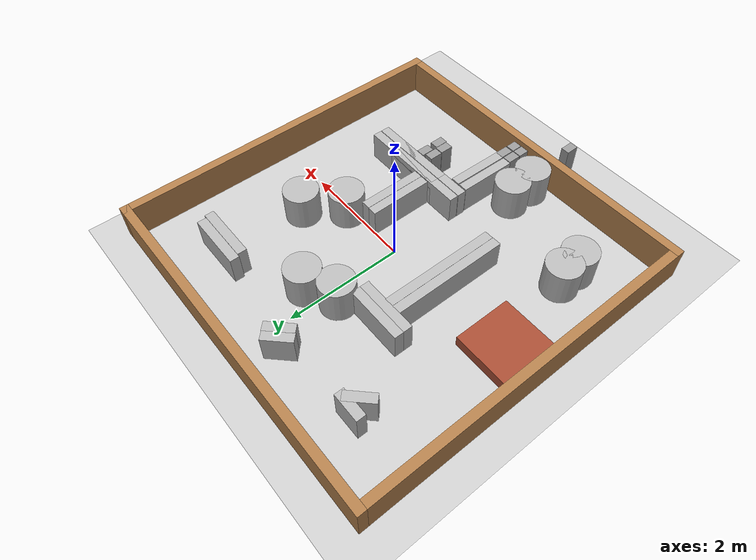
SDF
<sdf version="1.6">
 <world name="default">
  <light name="sun" type="directional">
   <pose>0 0 10 0 -0 0</pose>
   <diffuse>0.8 0.8 0.8 1</diffuse>
   <specular>0.2 0.2 0.2 1</specular>
   <attenuation>
    <range>1000</range>
    <constant>0.9</constant>
    <linear>0.01</linear>
    <quadratic>0.001</quadratic>
   </attenuation>
   <direction>-0.5 0.1 -0.9</direction>
  </light>
  <model name="ground_plane">
   <static>1</static>
   <link name="link">
    <collision name="collision">
     <geometry><plane><normal>0 0 1</normal><size>100 100</size></plane></geometry>
     <surface><friction><ode><mu>100</mu><mu2>50</mu2></ode></friction></surface>
    </collision>
    <visual name="visual">
     <cast_shadows>0</cast_shadows>
     <geometry><plane><normal>0 0 1</normal><size>100 100</size></plane></geometry>
     <material>
      <script><uri>file://media/materials/scripts/gazebo.material</uri><name>Gazebo/Grey</name></script>
     </material>
    </visual>
   </link>
  </model>
  <gravity>0 0 -9.8</gravity>
  <magnetic_field>6e-06 2.3e-05 -4.2e-05</magnetic_field>
  <atmosphere type="adiabatic"/>
  <physics name="default_physics" default="0" type="ode">
   <max_step_size>0.001</max_step_size>
   <real_time_factor>1</real_time_factor>
   <real_time_update_rate>1000</real_time_update_rate>
  </physics>
  <scene><ambient>0.4 0.4 0.4 1</ambient><background>0.7 0.7 0.7 1</background><shadows>1</shadows></scene>
  <spherical_coordinates>
   <surface_model>EARTH_WGS84</surface_model>
   <latitude_deg>0</latitude_deg>
   <longitude_deg>0</longitude_deg>
   <elevation>0</elevation>
   <heading_deg>0</heading_deg>
  </spherical_coordinates>
  <model name="cylinder_1">
   <pose>-2.12191 -1.51039 0.3 0 -0 0</pose>
   <static>1</static>
   <link name="link">
    <collision name="collision">
     <geometry><cylinder><radius>0.3</radius><length>0.6</length></cylinder></geometry>
    </collision>
    <visual name="visual">
     <geometry><cylinder><radius>0.3</radius><length>0.6</length></cylinder></geometry>
    </visual>
   </link>
  </model>
  <model name="cylinder_1_clone">
   <pose>1.59172 0.652449 0.3 0 -0 0</pose>
   <static>1</static>
   <link name="link">
    <collision name="collision">
     <geometry><cylinder><radius>0.3</radius><length>0.6</length></cylinder></geometry>
    </collision>
    <visual name="visual">
     <geometry><cylinder><radius>0.3</radius><length>0.6</length></cylinder></geometry>
    </visual>
   </link>
  </model>
  <model name="box_1_clone_0">
   <static>1</static>
   <pose>-0.960861 -0.096946 0.250001 0 -0 0</pose>
   <link name="link">
    <collision name="collision">
     <geometry><box><size>0.16 1.9931 0.5</size></box></geometry>
     <surface><friction><ode><mu>0.01</mu><mu2>0.01</mu2></ode></friction></surface>
    </collision>
    <visual name="visual"><geometry><box><size>0.16 1.9931 0.5</size></box></geometry></visual>
    <inertial>
     <inertia><ixx>1</ixx><ixy>0</ixy><ixz>0</ixz><iyy>1</iyy><iyz>0</iyz><izz>1</izz></inertia>
     <mass>1</mass>
    </inertial>
   </link>
  </model>
  <model name="box_1_clone_clone_1">
   <static>1</static>
   <pose>-0.979219 0.968438 0.250001 -3e-06 -0 -1.57648</pose>
   <link name="link">
    <collision name="collision">
     <geometry><box><size>0.16 1 0.5</size></box></geometry>
     <surface><friction><ode><mu>0.01</mu><mu2>0.01</mu2></ode></friction></surface>
    </collision>
    <visual name="visual"><geometry><box><size>0.16 1 0.5</size></box></geometry></visual>
    <inertial>
     <inertia><ixx>1</ixx><ixy>0</ixy><ixz>0</ixz><iyy>1</iyy><iyz>0</iyz><izz>1</izz></inertia>
     <mass>1</mass>
    </inertial>
   </link>
  </model>
  <model name="box_1_clone_clone_2">
   <static>1</static>
   <pose>1.60989 2.18682 0.250001 -3e-06 -0 -1.57648</pose>
   <link name="link">
    <collision name="collision">
     <geometry><box><size>0.16 1 0.5</size></box></geometry>
     <surface><friction><ode><mu>0.01</mu><mu2>0.01</mu2></ode></friction></surface>
    </collision>
    <visual name="visual"><geometry><box><size>0.16 1 0.5</size></box></geometry></visual>
    <inertial>
     <inertia><ixx>1</ixx><ixy>0</ixy><ixz>0</ixz><iyy>1</iyy><iyz>0</iyz><izz>1</izz></inertia>
     <mass>1</mass>
    </inertial>
   </link>
  </model>
  <model name="box_1_clone_clone_3">
   <static>1</static>
   <pose>1.66147 2.02547 0.250001 -3e-06 -0 -1.57648</pose>
   <link name="link">
    <collision name="collision">
     <geometry><box><size>0.16 1 0.5</size></box></geometry>
     <surface><friction><ode><mu>0.01</mu><mu2>0.01</mu2></ode></friction></surface>
    </collision>
    <visual name="visual"><geometry><box><size>0.16 1 0.5</size></box></geometry></visual>
    <inertial>
     <inertia><ixx>1</ixx><ixy>0</ixy><ixz>0</ixz><iyy>1</iyy><iyz>0</iyz><izz>1</izz></inertia>
     <mass>1</mass>
    </inertial>
   </link>
  </model>
  <model name="cylinder_1_clone_clone">
   <pose>0.280463 1.53345 0.3 0 -0 0</pose>
   <static>1</static>
   <link name="link">
    <collision name="collision">
     <geometry><cylinder><radius>0.3</radius><length>0.6</length></cylinder></geometry>
    </collision>
    <visual name="visual">
     <geometry><cylinder><radius>0.3</radius><length>0.6</length></cylinder></geometry>
    </visual>
   </link>
  </model>
  <model name="cylinder_1_clone_clone_clone">
   <pose>-0.43924 -2.13214 0.3 0 -0 0</pose>
   <static>1</static>
   <link name="link">
    <collision name="collision">
     <geometry><cylinder><radius>0.3</radius><length>0.6</length></cylinder></geometry>
    </collision>
    <visual name="visual">
     <geometry><cylinder><radius>0.3</radius><length>0.6</length></cylinder></geometry>
    </visual>
   </link>
  </model>
  <model name="box_1_clone_clone">
   <static>1</static>
   <pose>-1.87033 2.11757 0.250001 -3e-06 -0 -0.78</pose>
   <link name="link">
    <collision name="collision">
     <geometry><box><size>0.16 0.490126 0.5</size></box></geometry>
     <surface><friction><ode><mu>0.01</mu><mu2>0.01</mu2></ode></friction></surface>
    </collision>
    <visual name="visual"><geometry><box><size>0.16 0.490126 0.5</size></box></geometry></visual>
    <inertial>
     <inertia><ixx>1</ixx><ixy>0</ixy><ixz>0</ixz><iyy>1</iyy><iyz>0</iyz><izz>1</izz></inertia>
     <mass>1</mass>
    </inertial>
   </link>
  </model>
  <model name="box_1_clone_clone_0">
   <static>1</static>
   <pose>-0.313315 2.33846 0.250001 -3e-06 -0 -0.78</pose>
   <link name="link">
    <collision name="collision">
     <geometry><box><size>0.16 0.490126 0.5</size></box></geometry>
     <surface><friction><ode><mu>0.01</mu><mu2>0.01</mu2></ode></friction></surface>
    </collision>
    <visual name="visual"><geometry><box><size>0.16 0.490126 0.5</size></box></geometry></visual>
    <inertial>
     <inertia><ixx>1</ixx><ixy>0</ixy><ixz>0</ixz><iyy>1</iyy><iyz>0</iyz><izz>1</izz></inertia>
     <mass>1</mass>
    </inertial>
   </link>
  </model>
  <model name="walls_2">
   <link name="Wall_0">
    <pose>0 -3 0 0 -0 0</pose>
    <visual name="Wall_0_Visual">
     <pose>0 0 0.3 0 -0 0</pose>
     <geometry><box><size>6.15 0.15 0.6</size></box></geometry>
     <material>
      <script><uri>file://media/materials/scripts/gazebo.material</uri><name>Gazebo/Wood</name></script>
      <ambient>1 1 1 1</ambient>
      <diffuse>1 1 1 1</diffuse>
      <specular>0.2 0.2 0.2 1</specular>
      <emissive>0 0 0 1</emissive>
     </material>
    </visual>
    <collision name="Wall_0_Collision">
     <pose>0 0 0.3 0 -0 0</pose>
     <geometry><box><size>6.15 0.15 0.6</size></box></geometry>
     <surface>
      <friction>
       <ode><mu>1</mu><mu2>1</mu2><fdir1>0 0 0</fdir1><slip1>0</slip1><slip2>0</slip2></ode>
       <torsional>
        <coefficient>1</coefficient>
        <patch_radius>0</patch_radius>
        <surface_radius>0</surface_radius>
        <use_patch_radius>1</use_patch_radius>
        <ode><slip>0</slip></ode>
       </torsional>
      </friction>
      <bounce><restitution_coefficient>0</restitution_coefficient><threshold>1e+06</threshold></bounce>
      <contact>
       <collide_without_contact>0</collide_without_contact>
       <collide_without_contact_bitmask>1</collide_without_contact_bitmask>
       <collide_bitmask>1</collide_bitmask>
       <ode>
        <soft_cfm>0</soft_cfm>
        <soft_erp>0.2</soft_erp>
        <kp>1e+13</kp>
        <kd>1</kd>
        <max_vel>0.01</max_vel>
        <min_depth>0</min_depth>
       </ode>
       <bullet>
        <split_impulse>1</split_impulse>
        <split_impulse_penetration_threshold>-0.01</split_impulse_penetration_threshold>
        <soft_cfm>0</soft_cfm>
        <soft_erp>0.2</soft_erp>
        <kp>1e+13</kp>
        <kd>1</kd>
       </bullet>
      </contact>
     </surface>
    </collision>
   </link>
   <link name="Wall_3">
    <pose>3 0 0 0 -0 1.5708</pose>
    <visual name="Wall_3_Visual">
     <pose>0 0 0.3 0 -0 0</pose>
     <geometry><box><size>6.15 0.15 0.6</size></box></geometry>
     <material>
      <script><uri>file://media/materials/scripts/gazebo.material</uri><name>Gazebo/Wood</name></script>
      <ambient>1 1 1 1</ambient>
      <diffuse>1 1 1 1</diffuse>
      <specular>0.2 0.2 0.2 1</specular>
      <emissive>0 0 0 1</emissive>
     </material>
    </visual>
    <collision name="Wall_3_Collision">
     <pose>0 0 0.3 0 -0 0</pose>
     <geometry><box><size>6.15 0.15 0.6</size></box></geometry>
     <surface>
      <friction>
       <ode><mu>1</mu><mu2>1</mu2><fdir1>0 0 0</fdir1><slip1>0</slip1><slip2>0</slip2></ode>
       <torsional>
        <coefficient>1</coefficient>
        <patch_radius>0</patch_radius>
        <surface_radius>0</surface_radius>
        <use_patch_radius>1</use_patch_radius>
        <ode><slip>0</slip></ode>
       </torsional>
      </friction>
      <bounce><restitution_coefficient>0</restitution_coefficient><threshold>1e+06</threshold></bounce>
      <contact>
       <collide_without_contact>0</collide_without_contact>
       <collide_without_contact_bitmask>1</collide_without_contact_bitmask>
       <collide_bitmask>1</collide_bitmask>
       <ode>
        <soft_cfm>0</soft_cfm>
        <soft_erp>0.2</soft_erp>
        <kp>1e+13</kp>
        <kd>1</kd>
        <max_vel>0.01</max_vel>
        <min_depth>0</min_depth>
       </ode>
       <bullet>
        <split_impulse>1</split_impulse>
        <split_impulse_penetration_threshold>-0.01</split_impulse_penetration_threshold>
        <soft_cfm>0</soft_cfm>
        <soft_erp>0.2</soft_erp>
        <kp>1e+13</kp>
        <kd>1</kd>
       </bullet>
      </contact>
     </surface>
    </collision>
   </link>
   <link name="Wall_5">
    <pose>0 3 0 0 -0 3.14159</pose>
    <visual name="Wall_5_Visual">
     <pose>0 0 0.3 0 -0 0</pose>
     <geometry><box><size>6.15 0.15 0.6</size></box></geometry>
     <material>
      <script><uri>file://media/materials/scripts/gazebo.material</uri><name>Gazebo/Wood</name></script>
      <ambient>1 1 1 1</ambient>
      <diffuse>1 1 1 1</diffuse>
      <specular>0.2 0.2 0.2 1</specular>
      <emissive>0 0 0 1</emissive>
     </material>
    </visual>
    <collision name="Wall_5_Collision">
     <pose>0 0 0.3 0 -0 0</pose>
     <geometry><box><size>6.15 0.15 0.6</size></box></geometry>
     <surface>
      <friction>
       <ode><mu>1</mu><mu2>1</mu2><fdir1>0 0 0</fdir1><slip1>0</slip1><slip2>0</slip2></ode>
       <torsional>
        <coefficient>1</coefficient>
        <patch_radius>0</patch_radius>
        <surface_radius>0</surface_radius>
        <use_patch_radius>1</use_patch_radius>
        <ode><slip>0</slip></ode>
       </torsional>
      </friction>
      <bounce><restitution_coefficient>0</restitution_coefficient><threshold>1e+06</threshold></bounce>
      <contact>
       <collide_without_contact>0</collide_without_contact>
       <collide_without_contact_bitmask>1</collide_without_contact_bitmask>
       <collide_bitmask>1</collide_bitmask>
       <ode>
        <soft_cfm>0</soft_cfm>
        <soft_erp>0.2</soft_erp>
        <kp>1e+13</kp>
        <kd>1</kd>
        <max_vel>0.01</max_vel>
        <min_depth>0</min_depth>
       </ode>
       <bullet>
        <split_impulse>1</split_impulse>
        <split_impulse_penetration_threshold>-0.01</split_impulse_penetration_threshold>
        <soft_cfm>0</soft_cfm>
        <soft_erp>0.2</soft_erp>
        <kp>1e+13</kp>
        <kd>1</kd>
       </bullet>
      </contact>
     </surface>
    </collision>
   </link>
   <link name="Wall_6">
    <pose>-3 0 0 0 0 -1.5708</pose>
    <visual name="Wall_6_Visual">
     <pose>0 0 0.3 0 -0 0</pose>
     <geometry><box><size>6.15 0.15 0.6</size></box></geometry>
     <material>
      <script><uri>file://media/materials/scripts/gazebo.material</uri><name>Gazebo/Wood</name></script>
      <ambient>1 1 1 1</ambient>
      <diffuse>1 1 1 1</diffuse>
      <specular>0.2 0.2 0.2 1</specular>
      <emissive>0 0 0 1</emissive>
     </material>
    </visual>
    <collision name="Wall_6_Collision">
     <pose>0 0 0.3 0 -0 0</pose>
     <geometry><box><size>6.15 0.15 0.6</size></box></geometry>
     <surface>
      <friction>
       <ode><mu>1</mu><mu2>1</mu2><fdir1>0 0 0</fdir1><slip1>0</slip1><slip2>0</slip2></ode>
       <torsional>
        <coefficient>1</coefficient>
        <patch_radius>0</patch_radius>
        <surface_radius>0</surface_radius>
        <use_patch_radius>1</use_patch_radius>
        <ode><slip>0</slip></ode>
       </torsional>
      </friction>
      <bounce><restitution_coefficient>0</restitution_coefficient><threshold>1e+06</threshold></bounce>
      <contact>
       <collide_without_contact>0</collide_without_contact>
       <collide_without_contact_bitmask>1</collide_without_contact_bitmask>
       <collide_bitmask>1</collide_bitmask>
       <ode>
        <soft_cfm>0</soft_cfm>
        <soft_erp>0.2</soft_erp>
        <kp>1e+13</kp>
        <kd>1</kd>
        <max_vel>0.01</max_vel>
        <min_depth>0</min_depth>
       </ode>
       <bullet>
        <split_impulse>1</split_impulse>
        <split_impulse_penetration_threshold>-0.01</split_impulse_penetration_threshold>
        <soft_cfm>0</soft_cfm>
        <soft_erp>0.2</soft_erp>
        <kp>1e+13</kp>
        <kd>1</kd>
       </bullet>
      </contact>
     </surface>
    </collision>
   </link>
   <static>1</static>
   <pose>-0.022836 0.02028 0 0 -0 0</pose>
  </model>
  <model name="box_1_clone_0_clone">
   <static>1</static>
   <pose>-1.12236 -0.101653 0.250001 0 -0 0</pose>
   <link name="link">
    <collision name="collision">
     <geometry><box><size>0.16 1.9931 0.5</size></box></geometry>
     <surface><friction><ode><mu>0.01</mu><mu2>0.01</mu2></ode></friction></surface>
    </collision>
    <visual name="visual"><geometry><box><size>0.16 1.9931 0.5</size></box></geometry></visual>
    <inertial>
     <inertia><ixx>1</ixx><ixy>0</ixy><ixz>0</ixz><iyy>1</iyy><iyz>0</iyz><izz>1</izz></inertia>
     <mass>1</mass>
    </inertial>
   </link>
  </model>
  <model name="box_1_clone_clone_1_clone">
   <static>1</static>
   <pose>-0.978831 1.1274 0.250001 -3e-06 -0 -1.57648</pose>
   <link name="link">
    <collision name="collision">
     <geometry><box><size>0.16 1 0.5</size></box></geometry>
     <surface><friction><ode><mu>0.01</mu><mu2>0.01</mu2></ode></friction></surface>
    </collision>
    <visual name="visual"><geometry><box><size>0.16 1 0.5</size></box></geometry></visual>
    <inertial>
     <inertia><ixx>1</ixx><ixy>0</ixy><ixz>0</ixz><iyy>1</iyy><iyz>0</iyz><izz>1</izz></inertia>
     <mass>1</mass>
    </inertial>
   </link>
  </model>
  <model name="box_1_clone_clone_0_clone">
   <static>1</static>
   <pose>-0.427207 2.4412 0.250001 -3e-06 -0 -0.78</pose>
   <link name="link">
    <collision name="collision">
     <geometry><box><size>0.16 0.490126 0.5</size></box></geometry>
     <surface><friction><ode><mu>0.01</mu><mu2>0.01</mu2></ode></friction></surface>
    </collision>
    <visual name="visual"><geometry><box><size>0.16 0.490126 0.5</size></box></geometry></visual>
    <inertial>
     <inertia><ixx>1</ixx><ixy>0</ixy><ixz>0</ixz><iyy>1</iyy><iyz>0</iyz><izz>1</izz></inertia>
     <mass>1</mass>
    </inertial>
   </link>
  </model>
  <model name="box_1_clone_clone_clone_0">
   <static>1</static>
   <pose>-1.87515 2.28221 0.250001 -3e-06 -0 -1.57648</pose>
   <link name="link">
    <collision name="collision">
     <geometry><box><size>0.16 0.490126 0.5</size></box></geometry>
     <surface><friction><ode><mu>0.01</mu><mu2>0.01</mu2></ode></friction></surface>
    </collision>
    <visual name="visual"><geometry><box><size>0.16 0.490126 0.5</size></box></geometry></visual>
    <inertial>
     <inertia><ixx>1</ixx><ixy>0</ixy><ixz>0</ixz><iyy>1</iyy><iyz>0</iyz><izz>1</izz></inertia>
     <mass>1</mass>
    </inertial>
   </link>
  </model>
  <model name="cylinder_1_clone_0">
   <pose>-2.10817 -1.87423 0.3 0 -0 0</pose>
   <static>1</static>
   <link name="link">
    <collision name="collision">
     <geometry><cylinder><radius>0.3</radius><length>0.6</length></cylinder></geometry>
    </collision>
    <visual name="visual">
     <geometry><cylinder><radius>0.3</radius><length>0.6</length></cylinder></geometry>
    </visual>
   </link>
  </model>
  <model name="cylinder_1_clone_clone_clone_clone">
   <pose>-0.447788 -2.58828 0.3 0 -0 0</pose>
   <static>1</static>
   <link name="link">
    <collision name="collision">
     <geometry><cylinder><radius>0.3</radius><length>0.6</length></cylinder></geometry>
    </collision>
    <visual name="visual">
     <geometry><cylinder><radius>0.3</radius><length>0.6</length></cylinder></geometry>
    </visual>
   </link>
  </model>
  <model name="cylinder_1_clone_clone_clone_clone_0">
   <pose>1.11789 0.094036 0.3 0 -0 0</pose>
   <static>1</static>
   <link name="link">
    <collision name="collision">
     <geometry><cylinder><radius>0.3</radius><length>0.6</length></cylinder></geometry>
    </collision>
    <visual name="visual">
     <geometry><cylinder><radius>0.3</radius><length>0.6</length></cylinder></geometry>
    </visual>
   </link>
  </model>
  <model name="cylinder_1_clone_clone_clone_0">
   <pose>-0.234976 1.28443 0.3 0 -0 0</pose>
   <static>1</static>
   <link name="link">
    <collision name="collision">
     <geometry><cylinder><radius>0.3</radius><length>0.6</length></cylinder></geometry>
    </collision>
    <visual name="visual">
     <geometry><cylinder><radius>0.3</radius><length>0.6</length></cylinder></geometry>
    </visual>
   </link>
  </model>
  <model name="invisibleWall">
   <pose>-2.38151 -0.100183 0 0 -0 0</pose>
   <link name="Wall_2">
    <collision name="Wall_2_Collision">
     <geometry><box><size>1.01 1 0.2</size></box></geometry>
     <pose>0 0 0.1 0 -0 0</pose>
    </collision>
    <visual name="Wall_2_Visual">
     <pose>0 0 0.1 0 -0 0</pose>
     <geometry><box><size>1.01 1 0.2</size></box></geometry>
     <material>
      <script><uri>file://media/materials/scripts/gazebo.material</uri><name>Gazebo/Bricks</name></script>
      <ambient>1 1 1 1</ambient>
     </material>
    </visual>
   </link>
   <static>1</static>
  </model>
  <model name="box_1_clone_clone_1_clone_0_clone_clone_clone_clone_0">
   <link name="link">
    <inertial>
     <inertia><ixx>1</ixx><ixy>0</ixy><ixz>0</ixz><iyy>1</iyy><iyz>0</iyz><izz>1</izz></inertia>
     <mass>1</mass>
    </inertial>
    <visual name="ModelPreview_13::link::visual_2">
     <geometry><box><size>0.16 2 0.5</size></box></geometry>
     <material><shader type="vertex"><normal_map>__default__</normal_map></shader></material>
    </visual>
    <visual name="ModelPreview_13::link::visual_1">
     <geometry><box><size>0.16 1 0.5</size></box></geometry>
     <material><shader type="vertex"><normal_map>__default__</normal_map></shader></material>
    </visual>
    <visual name="visual">
     <geometry><box><size>0.16 2 0.5</size></box></geometry>
     <material><shader type="vertex"><normal_map>__default__</normal_map></shader></material>
    </visual>
    <collision name="collision">
     <geometry><box><size>0.16 2 0.5</size></box></geometry>
     <surface>
      <friction>
       <ode><mu>0.01</mu><mu2>0.01</mu2><fdir1>0 0 0</fdir1><slip1>0</slip1><slip2>0</slip2></ode>
       <torsional>
        <coefficient>1</coefficient>
        <patch_radius>0</patch_radius>
        <surface_radius>0</surface_radius>
        <use_patch_radius>1</use_patch_radius>
        <ode><slip>0</slip></ode>
       </torsional>
      </friction>
      <bounce><restitution_coefficient>0</restitution_coefficient><threshold>1e+06</threshold></bounce>
      <contact>
       <collide_without_contact>0</collide_without_contact>
       <collide_without_contact_bitmask>1</collide_without_contact_bitmask>
       <collide_bitmask>1</collide_bitmask>
       <ode>
        <soft_cfm>0</soft_cfm>
        <soft_erp>0.2</soft_erp>
        <kp>1e+13</kp>
        <kd>1</kd>
        <max_vel>0.01</max_vel>
        <min_depth>0</min_depth>
       </ode>
       <bullet>
        <split_impulse>1</split_impulse>
        <split_impulse_penetration_threshold>-0.01</split_impulse_penetration_threshold>
        <soft_cfm>0</soft_cfm>
        <soft_erp>0.2</soft_erp>
        <kp>1e+13</kp>
        <kd>1</kd>
       </bullet>
      </contact>
     </surface>
    </collision>
   </link>
   <static>1</static>
   <pose>0.943713 -1.36543 0.250001 -3e-06 -0 -1.57648</pose>
  </model>
  <model name="box_1_clone_clone_1_clone_0_clone_clone_clone_0">
   <link name="link">
    <inertial>
     <inertia><ixx>1</ixx><ixy>0</ixy><ixz>0</ixz><iyy>1</iyy><iyz>0</iyz><izz>1</izz></inertia>
     <mass>1</mass>
    </inertial>
    <visual name="ModelPreview_13::link::visual_2">
     <geometry><box><size>0.16 2 0.5</size></box></geometry>
     <material><shader type="vertex"><normal_map>__default__</normal_map></shader></material>
    </visual>
    <visual name="ModelPreview_13::link::visual_1">
     <geometry><box><size>0.16 1 0.5</size></box></geometry>
     <material><shader type="vertex"><normal_map>__default__</normal_map></shader></material>
    </visual>
    <visual name="visual">
     <geometry><box><size>0.16 2 0.5</size></box></geometry>
     <material><shader type="vertex"><normal_map>__default__</normal_map></shader></material>
    </visual>
    <collision name="collision">
     <geometry><box><size>0.16 2 0.5</size></box></geometry>
     <surface>
      <friction>
       <ode><mu>0.01</mu><mu2>0.01</mu2><fdir1>0 0 0</fdir1><slip1>0</slip1><slip2>0</slip2></ode>
       <torsional>
        <coefficient>1</coefficient>
        <patch_radius>0</patch_radius>
        <surface_radius>0</surface_radius>
        <use_patch_radius>1</use_patch_radius>
        <ode><slip>0</slip></ode>
       </torsional>
      </friction>
      <bounce><restitution_coefficient>0</restitution_coefficient><threshold>1e+06</threshold></bounce>
      <contact>
       <collide_without_contact>0</collide_without_contact>
       <collide_without_contact_bitmask>1</collide_without_contact_bitmask>
       <collide_bitmask>1</collide_bitmask>
       <ode>
        <soft_cfm>0</soft_cfm>
        <soft_erp>0.2</soft_erp>
        <kp>1e+13</kp>
        <kd>1</kd>
        <max_vel>0.01</max_vel>
        <min_depth>0</min_depth>
       </ode>
       <bullet>
        <split_impulse>1</split_impulse>
        <split_impulse_penetration_threshold>-0.01</split_impulse_penetration_threshold>
        <soft_cfm>0</soft_cfm>
        <soft_erp>0.2</soft_erp>
        <kp>1e+13</kp>
        <kd>1</kd>
       </bullet>
      </contact>
     </surface>
    </collision>
   </link>
   <static>1</static>
   <pose>0.945755 -1.19837 0.250001 -3e-06 -0 -1.57648</pose>
  </model>
  <model name="box_1_clone_clone_clone_clone_2_clone_0">
   <link name="link">
    <inertial>
     <inertia><ixx>1</ixx><ixy>0</ixy><ixz>0</ixz><iyy>1</iyy><iyz>0</iyz><izz>1</izz></inertia>
     <mass>1</mass>
    </inertial>
    <kinematic>1</kinematic>
    <visual name="visual">
     <geometry><box><size>0.16 1.10724 0.5</size></box></geometry>
     <material><shader type="vertex"><normal_map>__default__</normal_map></shader></material>
    </visual>
    <collision name="collision">
     <geometry><box><size>0.16 1.10724 0.5</size></box></geometry>
     <surface>
      <friction>
       <ode><mu>0.01</mu><mu2>0.01</mu2><fdir1>0 0 0</fdir1><slip1>0</slip1><slip2>0</slip2></ode>
       <torsional>
        <coefficient>1</coefficient>
        <patch_radius>0</patch_radius>
        <surface_radius>0</surface_radius>
        <use_patch_radius>1</use_patch_radius>
        <ode><slip>0</slip></ode>
       </torsional>
      </friction>
      <bounce><restitution_coefficient>0</restitution_coefficient><threshold>1e+06</threshold></bounce>
      <contact>
       <collide_without_contact>0</collide_without_contact>
       <collide_without_contact_bitmask>1</collide_without_contact_bitmask>
       <collide_bitmask>1</collide_bitmask>
       <ode>
        <soft_cfm>0</soft_cfm>
        <soft_erp>0.2</soft_erp>
        <kp>1e+13</kp>
        <kd>1</kd>
        <max_vel>0.01</max_vel>
        <min_depth>0</min_depth>
       </ode>
       <bullet>
        <split_impulse>1</split_impulse>
        <split_impulse_penetration_threshold>-0.01</split_impulse_penetration_threshold>
        <soft_cfm>0</soft_cfm>
        <soft_erp>0.2</soft_erp>
        <kp>1e+13</kp>
        <kd>1</kd>
       </bullet>
      </contact>
     </surface>
    </collision>
   </link>
   <static>1</static>
   <pose>0.733748 -0.552749 0.250001 -3e-06 -0 -3.14</pose>
  </model>
  <model name="box_1_clone_clone_clone_clone_2_0">
   <link name="link">
    <inertial>
     <inertia><ixx>1</ixx><ixy>0</ixy><ixz>0</ixz><iyy>1</iyy><iyz>0</iyz><izz>1</izz></inertia>
     <mass>1</mass>
    </inertial>
    <kinematic>1</kinematic>
    <visual name="visual">
     <geometry><box><size>0.16 1.10724 0.5</size></box></geometry>
     <material><shader type="vertex"><normal_map>__default__</normal_map></shader></material>
    </visual>
    <collision name="collision">
     <geometry><box><size>0.16 1.10724 0.5</size></box></geometry>
     <surface>
      <friction>
       <ode><mu>0.01</mu><mu2>0.01</mu2><fdir1>0 0 0</fdir1><slip1>0</slip1><slip2>0</slip2></ode>
       <torsional>
        <coefficient>1</coefficient>
        <patch_radius>0</patch_radius>
        <surface_radius>0</surface_radius>
        <use_patch_radius>1</use_patch_radius>
        <ode><slip>0</slip></ode>
       </torsional>
      </friction>
      <bounce><restitution_coefficient>0</restitution_coefficient><threshold>1e+06</threshold></bounce>
      <contact>
       <collide_without_contact>0</collide_without_contact>
       <collide_without_contact_bitmask>1</collide_without_contact_bitmask>
       <collide_bitmask>1</collide_bitmask>
       <ode>
        <soft_cfm>0</soft_cfm>
        <soft_erp>0.2</soft_erp>
        <kp>1e+13</kp>
        <kd>1</kd>
        <max_vel>0.01</max_vel>
        <min_depth>0</min_depth>
       </ode>
       <bullet>
        <split_impulse>1</split_impulse>
        <split_impulse_penetration_threshold>-0.01</split_impulse_penetration_threshold>
        <soft_cfm>0</soft_cfm>
        <soft_erp>0.2</soft_erp>
        <kp>1e+13</kp>
        <kd>1</kd>
       </bullet>
      </contact>
     </surface>
    </collision>
   </link>
   <static>1</static>
   <pose>0.570202 -0.548976 0.250001 -3e-06 -0 -3.14</pose>
  </model>
  <model name="box_1_clone_clone_3_clone_clone">
   <static>1</static>
   <pose>0.206797 -1.96245 0.250001 0 -3e-06 3.12391</pose>
   <link name="link">
    <collision name="collision">
     <geometry><box><size>0.16 1 0.5</size></box></geometry>
     <surface><friction><ode><mu>0.01</mu><mu2>0.01</mu2></ode></friction></surface>
    </collision>
    <visual name="visual"><geometry><box><size>0.16 1 0.5</size></box></geometry></visual>
    <inertial>
     <inertia><ixx>1</ixx><ixy>0</ixy><ixz>0</ixz><iyy>1</iyy><iyz>0</iyz><izz>1</izz></inertia>
     <mass>1</mass>
    </inertial>
   </link>
  </model>
  <model name="box_1_clone_clone_3_clone_clone_0">
   <static>1</static>
   <pose>0.028638 -1.96124 0.250001 0 -3e-06 3.12391</pose>
   <link name="link">
    <collision name="collision">
     <geometry><box><size>0.16 1 0.5</size></box></geometry>
     <surface><friction><ode><mu>0.01</mu><mu2>0.01</mu2></ode></friction></surface>
    </collision>
    <visual name="visual"><geometry><box><size>0.16 1 0.5</size></box></geometry></visual>
    <inertial>
     <inertia><ixx>1</ixx><ixy>0</ixy><ixz>0</ixz><iyy>1</iyy><iyz>0</iyz><izz>1</izz></inertia>
     <mass>1</mass>
    </inertial>
   </link>
  </model>
  <model name="Untitled_small">
   <pose>-0.437 -3.518 0 0 -0 0</pose>
   <link name="Wall_1">
    <collision name="Wall_1_Collision">
     <geometry><box><size>0.23 0.15 0.5</size></box></geometry>
     <pose>0 0 0.25 0 -0 0</pose>
    </collision>
    <visual name="Wall_1_Visual">
     <pose>0 0 0.25 0 -0 0</pose>
     <geometry><box><size>0.23 0.15 0.5</size></box></geometry>
     <material>
      <script><uri>file://media/materials/scripts/gazebo.material</uri><name>Gazebo/Grey</name></script>
      <ambient>1 1 1 1</ambient>
     </material>
    </visual>
    <pose>0 0 0 0 -0 1.5708</pose>
   </link>
   <static>1</static>
  </model>
  <model name="Untitled_small_clone">
   <pose>0.198697 -2.57883 0 0 -0 0</pose>
   <link name="Wall_1">
    <collision name="Wall_1_Collision">
     <geometry><box><size>0.23 0.15 0.5</size></box></geometry>
     <pose>0 0 0.25 0 -0 0</pose>
    </collision>
    <visual name="Wall_1_Visual">
     <pose>0 0 0.25 0 -0 0</pose>
     <geometry><box><size>0.23 0.15 0.5</size></box></geometry>
     <material>
      <script><uri>file://media/materials/scripts/gazebo.material</uri><name>Gazebo/Grey</name></script>
      <ambient>1 1 1 1</ambient>
     </material>
    </visual>
    <pose>0 0 0 0 -0 1.5708</pose>
   </link>
   <static>1</static>
  </model>
  <model name="Untitled_small_clone_0">
   <pose>0.195531 -2.8287 0 0 -0 0</pose>
   <link name="Wall_1">
    <collision name="Wall_1_Collision">
     <geometry><box><size>0.23 0.15 0.5</size></box></geometry>
     <pose>0 0 0.25 0 -0 0</pose>
    </collision>
    <visual name="Wall_1_Visual">
     <pose>0 0 0.25 0 -0 0</pose>
     <geometry><box><size>0.23 0.15 0.5</size></box></geometry>
     <material>
      <script><uri>file://media/materials/scripts/gazebo.material</uri><name>Gazebo/Grey</name></script>
      <ambient>1 1 1 1</ambient>
     </material>
    </visual>
    <pose>0 0 0 0 -0 1.5708</pose>
   </link>
   <static>1</static>
  </model>
  <model name="Untitled_small_clone_1">
   <pose>0.032865 -2.58627 0 0 -0 0</pose>
   <link name="Wall_1">
    <collision name="Wall_1_Collision">
     <geometry><box><size>0.23 0.15 0.5</size></box></geometry>
     <pose>0 0 0.25 0 -0 0</pose>
    </collision>
    <visual name="Wall_1_Visual">
     <pose>0 0 0.25 0 -0 0</pose>
     <geometry><box><size>0.23 0.15 0.5</size></box></geometry>
     <material>
      <script><uri>file://media/materials/scripts/gazebo.material</uri><name>Gazebo/Grey</name></script>
      <ambient>1 1 1 1</ambient>
     </material>
    </visual>
    <pose>0 0 0 0 -0 1.5708</pose>
   </link>
   <static>1</static>
  </model>
  <model name="Untitled_small_clone_2">
   <pose>0.031981 -2.82886 0 0 -0 0</pose>
   <link name="Wall_1">
    <collision name="Wall_1_Collision">
     <geometry><box><size>0.23 0.15 0.5</size></box></geometry>
     <pose>0 0 0.25 0 -0 0</pose>
    </collision>
    <visual name="Wall_1_Visual">
     <pose>0 0 0.25 0 -0 0</pose>
     <geometry><box><size>0.23 0.15 0.5</size></box></geometry>
     <material>
      <script><uri>file://media/materials/scripts/gazebo.material</uri><name>Gazebo/Grey</name></script>
      <ambient>1 1 1 1</ambient>
     </material>
    </visual>
    <pose>0 0 0 0 -0 1.5708</pose>
   </link>
   <static>1</static>
  </model>
  <model name="Untitled_small_clone_4">
   <pose>1.08928 -1.87638 0 0 -0 0</pose>
   <link name="Wall_1">
    <collision name="Wall_1_Collision">
     <geometry><box><size>0.23 0.15 0.5</size></box></geometry>
     <pose>0 0 0.25 0 -0 0</pose>
    </collision>
    <visual name="Wall_1_Visual">
     <pose>0 0 0.25 0 -0 0</pose>
     <geometry><box><size>0.23 0.15 0.5</size></box></geometry>
     <material>
      <script><uri>file://media/materials/scripts/gazebo.material</uri><name>Gazebo/Grey</name></script>
      <ambient>1 1 1 1</ambient>
     </material>
    </visual>
    <pose>0 0 0 0 -0 1.5708</pose>
   </link>
   <static>1</static>
  </model>
  <model name="Untitled_small_clone_3">
   <pose>1.08706 -1.5688 0 0 -0 0</pose>
   <link name="Wall_1">
    <collision name="Wall_1_Collision">
     <geometry><box><size>0.23 0.15 0.5</size></box></geometry>
     <pose>0 0 0.25 0 -0 0</pose>
    </collision>
    <visual name="Wall_1_Visual">
     <pose>0 0 0.25 0 -0 0</pose>
     <geometry><box><size>0.23 0.15 0.5</size></box></geometry>
     <material>
      <script><uri>file://media/materials/scripts/gazebo.material</uri><name>Gazebo/Grey</name></script>
      <ambient>1 1 1 1</ambient>
     </material>
    </visual>
    <pose>0 0 0 0 -0 1.5708</pose>
   </link>
   <static>1</static>
  </model>
  <model name="Untitled_small_clone_5">
   <pose>0.926703 -1.61519 0 0 -0 0</pose>
   <link name="Wall_1">
    <collision name="Wall_1_Collision">
     <geometry><box><size>0.23 0.15 0.5</size></box></geometry>
     <pose>0 0 0.25 0 -0 0</pose>
    </collision>
    <visual name="Wall_1_Visual">
     <pose>0 0 0.25 0 -0 0</pose>
     <geometry><box><size>0.23 0.15 0.5</size></box></geometry>
     <material>
      <script><uri>file://media/materials/scripts/gazebo.material</uri><name>Gazebo/Grey</name></script>
      <ambient>1 1 1 1</ambient>
     </material>
    </visual>
    <pose>0 0 0 0 -0 1.5708</pose>
   </link>
   <static>1</static>
  </model>
  <model name="Untitled_small_clone_6">
   <pose>0.934303 -1.8582 0 0 -0 0</pose>
   <link name="Wall_1">
    <collision name="Wall_1_Collision">
     <geometry><box><size>0.23 0.15 0.5</size></box></geometry>
     <pose>0 0 0.25 0 -0 0</pose>
    </collision>
    <visual name="Wall_1_Visual">
     <pose>0 0 0.25 0 -0 0</pose>
     <geometry><box><size>0.23 0.15 0.5</size></box></geometry>
     <material>
      <script><uri>file://media/materials/scripts/gazebo.material</uri><name>Gazebo/Grey</name></script>
      <ambient>1 1 1 1</ambient>
     </material>
    </visual>
    <pose>0 0 0 0 -0 1.5708</pose>
   </link>
   <static>1</static>
  </model>
 </world>
</sdf>
